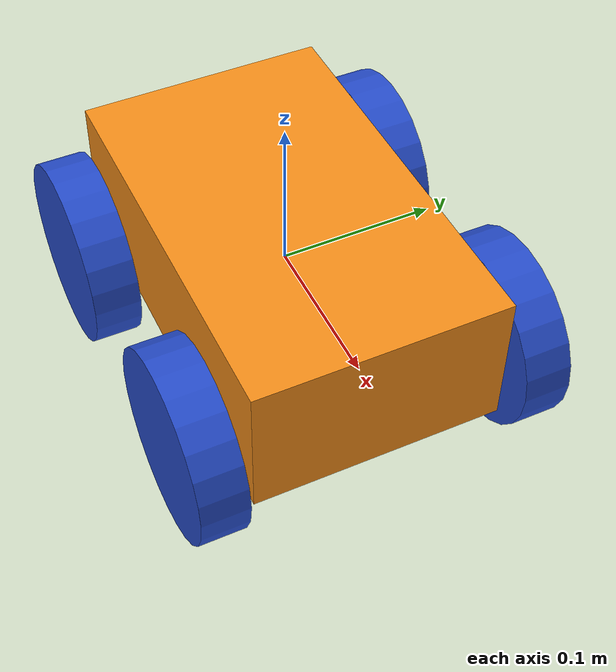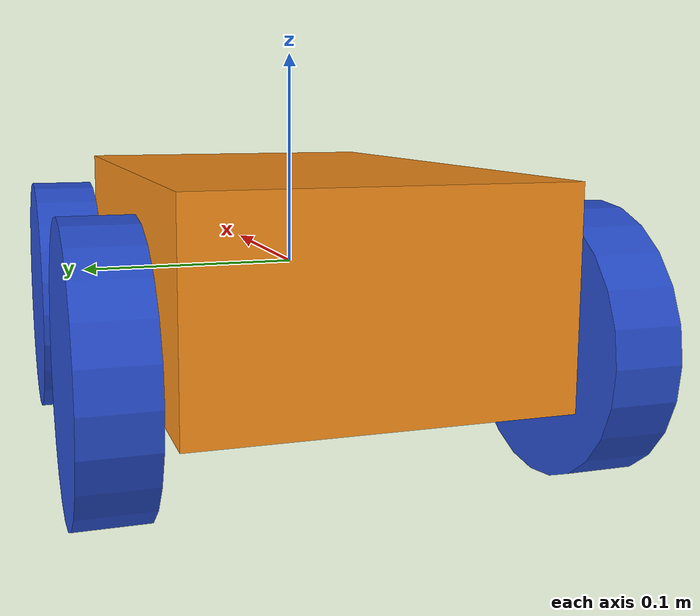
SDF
<sdf version='1.6'>
  <model name='m2wr'>
    <link name='link_chassis'>
      <pose frame=''>0 0 0 0 -0 0</pose>
      <inertial>
        <pose frame=''>0 0 0.1 0 -0 0</pose>
        <mass>1.27</mass>
        <inertia>
          <ixx>0.0080696</ixx>
          <ixy>0</ixy>
          <ixz>0</ixz>
          <iyy>0.00986333</iyy>
          <iyz>0</iyz>
          <izz>0.00362433</izz>
        </inertia>
      </inertial>
      <collision name='link_chassis_fixed_joint_lump__collision_chassis_collision'>
        <pose frame=''>0 0 0 0 -0 0</pose>
        <geometry>
          <box>
            <size>0.26 0.16 0.093</size>
          </box>
        </geometry>
      </collision>
      <visual name='link_chassis_visual'>
        <pose frame=''>0 0 0 0 -0 0</pose>
        <geometry>
          <box>
            <size>0.26 0.16 0.093</size>
          </box>
        </geometry>
        <material>
          <script>
            <name>Gazebo/Orange</name>
            <uri>file://media/materials/scripts/gazebo.material</uri>
          </script>
        </material>
      </visual>
      <gravity>1</gravity>
      <velocity_decay/>
    </link>
    <link name='link_left_wheel'>
      <pose frame=''>-0.085 -0.1025 -0.0256 0 -0 0</pose>
      <inertial>
        <pose frame=''>0 0 -0 0 1.5707 1.5707</pose>
        <mass>0.01</mass>
        <inertia>
          <ixx>0.000526667</ixx>
          <ixy>0</ixy>
          <ixz>0</ixz>
          <iyy>0.000526667</iyy>
          <iyz>0</iyz>
          <izz>0.001</izz>
        </inertia>
      </inertial>
      <collision name='link_left_wheel_fixed_joint_lump__link_right_wheel_collision_collision'>
        <pose frame=''>0 0 -0 3.14159 1.57079 -1.57089</pose>
        <geometry>
          <cylinder>
            <length>0.03</length>
            <radius>0.06</radius>
          </cylinder>
        </geometry>
      </collision>
      <visual name='link_left_wheel_visual_visual'>
        <pose frame=''>0 0 -0 3.14159 1.57079 -1.57089</pose>
        <geometry>
          <cylinder>
            <length>0.03</length>
            <radius>0.06</radius>
          </cylinder>
        </geometry>
        <material>
          <script>
            <name>Gazebo/Blue</name>
            <uri>file://media/materials/scripts/gazebo.material</uri>
          </script>
        </material>
      </visual>
      <gravity>1</gravity>
      <velocity_decay/>
    </link>
    <joint name='joint_left_wheel' type='revolute'>
      <child>link_left_wheel</child>
      <parent>link_chassis</parent>
      <axis>
        <xyz>0 1 0</xyz>
        <limit>
          <lower>-1e+16</lower>
          <upper>1e+16</upper>
        </limit>
        <dynamics>
          <spring_reference>0</spring_reference>
          <spring_stiffness>0</spring_stiffness>
        </dynamics>
        <use_parent_model_frame>1</use_parent_model_frame>
      </axis>
    </joint>
    <link name='link_left_wheel_back'>
      <pose frame=''>0.085 -0.1025 -0.0256 0 -0 0</pose>
      <inertial>
        <pose frame=''>0 0 -0 0 1.5707 1.5707</pose>
        <mass>0.01</mass>
        <inertia>
          <ixx>0.000526667</ixx>
          <ixy>0</ixy>
          <ixz>0</ixz>
          <iyy>0.000526667</iyy>
          <iyz>0</iyz>
          <izz>0.001</izz>
        </inertia>
      </inertial>
      <collision name='link_left_wheel_back_fixed_joint_lump__link_right_wheel_collision_collision'>
        <pose frame=''>0 0 -0 3.14159 1.57079 -1.57089</pose>
        <geometry>
          <cylinder>
            <length>0.03</length>
            <radius>0.06</radius>
          </cylinder>
        </geometry>
      </collision>
      <visual name='link_left_wheel_back_visual_visual'>
        <pose frame=''>0 0 -0 3.14159 1.57079 -1.57089</pose>
        <geometry>
          <cylinder>
            <length>0.03</length>
            <radius>0.06</radius>
          </cylinder>
        </geometry>
        <material>
          <script>
            <name>Gazebo/Blue</name>
            <uri>file://media/materials/scripts/gazebo.material</uri>
          </script>
        </material>
      </visual>
      <gravity>1</gravity>
      <velocity_decay/>
    </link>
    <joint name='joint_left_wheel_back' type='revolute'>
      <child>link_left_wheel_back</child>
      <parent>link_chassis</parent>
      <axis>
        <xyz>0 1 0</xyz>
        <limit>
          <lower>-1e+16</lower>
          <upper>1e+16</upper>
        </limit>
        <dynamics>
          <spring_reference>0</spring_reference>
          <spring_stiffness>0</spring_stiffness>
        </dynamics>
        <use_parent_model_frame>1</use_parent_model_frame>
      </axis>
    </joint>
    <link name='link_right_wheel'>
      <pose frame=''>-0.085 0.1025 -0.0256 0 -0 0</pose>
      <inertial>
        <pose frame=''>0 0 -0 0 1.5707 1.5707</pose>
        <mass>0.01</mass>
        <inertia>
          <ixx>0.000526667</ixx>
          <ixy>0</ixy>
          <ixz>0</ixz>
          <iyy>0.000526667</iyy>
          <iyz>0</iyz>
          <izz>0.001</izz>
        </inertia>
      </inertial>
      <collision name='link_right_wheel_collision_collision'>
        <pose frame=''>0 0 -0 3.14159 1.57079 -1.57089</pose>
        <geometry>
          <cylinder>
            <length>0.03</length>
            <radius>0.06</radius>
          </cylinder>
        </geometry>
        <surface>
          <contact>
            <ode/>
          </contact>
          <friction>
            <ode/>
          </friction>
        </surface>
      </collision>
      <visual name='link_right_wheel_visual_visual'>
        <pose frame=''>0 0 -0 3.14159 1.57079 -1.57089</pose>
        <geometry>
          <cylinder>
            <length>0.03</length>
            <radius>0.06</radius>
          </cylinder>
        </geometry>
        <material>
          <script>
            <name>Gazebo/Blue</name>
            <uri>file://media/materials/scripts/gazebo.material</uri>
          </script>
        </material>
      </visual>
      <gravity>1</gravity>
      <velocity_decay/>
    </link>
    <joint name='joint_right_wheel' type='revolute'>
      <child>link_right_wheel</child>
      <parent>link_chassis</parent>
      <axis>
        <xyz>0 1 0</xyz>
        <limit>
          <lower>-1e+16</lower>
          <upper>1e+16</upper>
        </limit>
        <dynamics>
          <spring_reference>0</spring_reference>
          <spring_stiffness>0</spring_stiffness>
        </dynamics>
        <use_parent_model_frame>1</use_parent_model_frame>
      </axis>
    </joint>
    <link name='link_right_wheel_back'>
      <pose frame=''>0.085 0.1025 -0.0256 0 -0 0</pose>
      <inertial>
        <pose frame=''>0 0 -0 0 1.5707 1.5707</pose>
        <mass>0.01</mass>
        <inertia>
          <ixx>0.000526667</ixx>
          <ixy>0</ixy>
          <ixz>0</ixz>
          <iyy>0.000526667</iyy>
          <iyz>0</iyz>
          <izz>0.001</izz>
        </inertia>
      </inertial>
      <collision name='link_right_wheel_back_fixed_joint_lump__link_right_wheel_collision_collision'>
        <pose frame=''>0 0 -0 3.14159 1.57079 -1.57089</pose>
        <geometry>
          <cylinder>
            <length>0.03</length>
            <radius>0.06</radius>
          </cylinder>
        </geometry>
      </collision>
      <visual name='link_right_wheel_back_visual_visual'>
        <pose frame=''>0 0 -0 3.14159 1.57079 -1.57089</pose>
        <geometry>
          <cylinder>
            <length>0.03</length>
            <radius>0.06</radius>
          </cylinder>
        </geometry>
        <material>
          <script>
            <name>Gazebo/Blue</name>
            <uri>file://media/materials/scripts/gazebo.material</uri>
          </script>
        </material>
      </visual>
      <gravity>1</gravity>
      <velocity_decay/>
    </link>
    <joint name='joint_right_wheel_back' type='revolute'>
      <child>link_right_wheel_back</child>
      <parent>link_chassis</parent>
      <axis>
        <xyz>0 1 0</xyz>
        <limit>
          <lower>-1e+16</lower>
          <upper>1e+16</upper>
        </limit>
        <dynamics>
          <spring_reference>0</spring_reference>
          <spring_stiffness>0</spring_stiffness>
        </dynamics>
        <use_parent_model_frame>1</use_parent_model_frame>
      </axis>
    </joint>
    <static>0</static>
    <plugin name='skid_steer_drive_controller' filename='libgazebo_ros_skid_steer_drive.so'>
      <updateRate>20.0</updateRate>
      <robotNamespace>/</robotNamespace>
      <leftFrontJoint>joint_left_wheel</leftFrontJoint>
      <rightFrontJoint>joint_right_wheel</rightFrontJoint>
      <leftRearJoint>joint_left_wheel_back</leftRearJoint>
      <rightRearJoint>joint_right_wheel_back</rightRearJoint>
      <wheelSeparation>0.175</wheelSeparation>
      <wheelDiameter>0.12</wheelDiameter>
      <robotBaseFrame>link_chassis</robotBaseFrame>
      <torque>0.5</torque>
      <topicName>/cmd_vel</topicName>
      <broadcastTF>0</broadcastTF>
    </plugin>
  </model>
</sdf>
